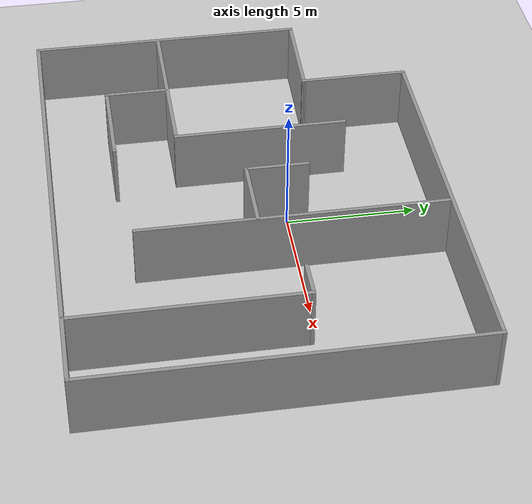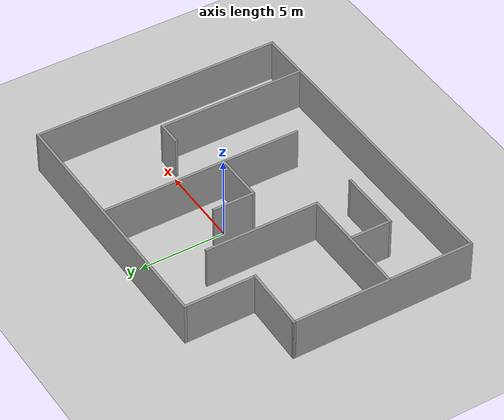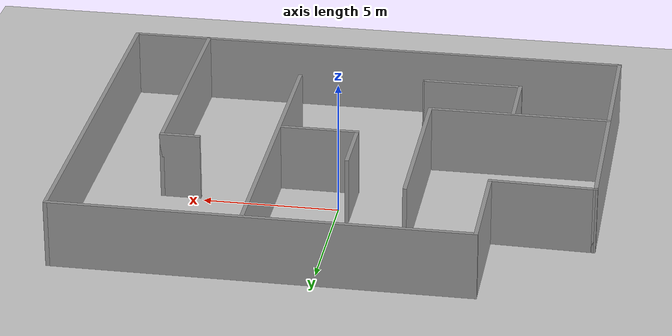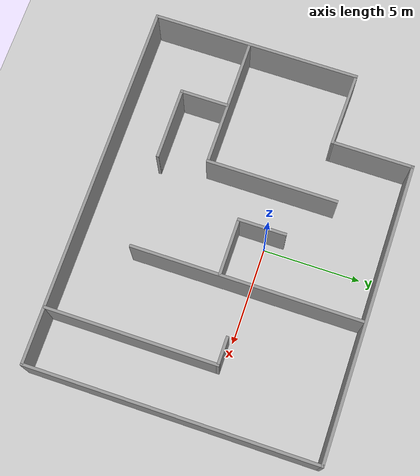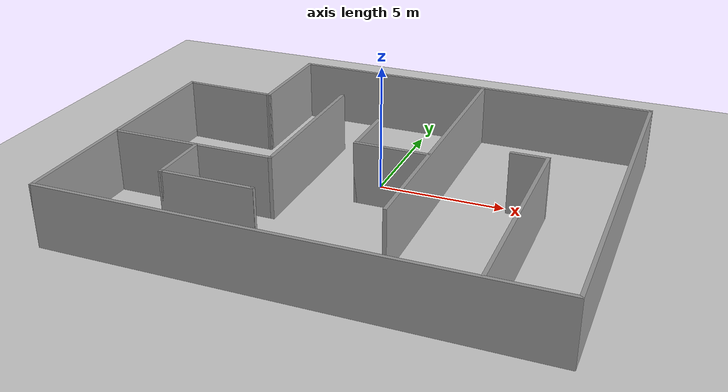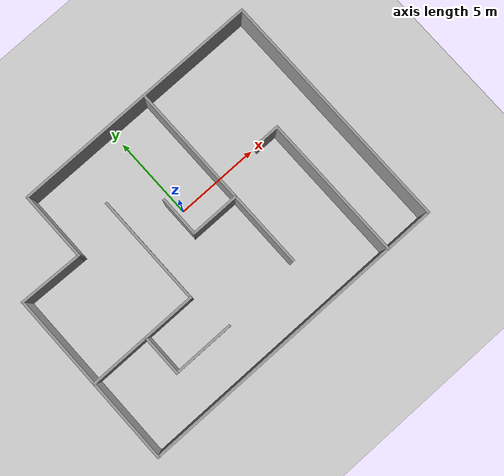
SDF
<sdf version="1.7">
 <world name="default">
  <light name="sun" type="directional">
   <cast_shadows>0</cast_shadows>
   <pose>0 0 10 0 -0 0</pose>
   <diffuse>0.8 0.8 0.8 1</diffuse>
   <specular>0.2 0.2 0.2 1</specular>
   <attenuation>
    <range>1000</range>
    <constant>0.9</constant>
    <linear>0.01</linear>
    <quadratic>0.001</quadratic>
   </attenuation>
   <direction>-0.5 0.1 -0.9</direction>
   <spot><inner_angle>0</inner_angle><outer_angle>0</outer_angle><falloff>0</falloff></spot>
  </light>
  <model name="ground_plane">
   <static>1</static>
   <link name="link">
    <collision name="collision">
     <geometry><plane><normal>0 0 1</normal><size>100 100</size></plane></geometry>
     <surface><friction><ode><mu>100</mu><mu2>50</mu2></ode></friction></surface>
    </collision>
    <visual name="visual">
     <cast_shadows>0</cast_shadows>
     <geometry><plane><normal>0 0 1</normal><size>100 100</size></plane></geometry>
     <material>
      <script><uri>file://media/materials/scripts/gazebo.material</uri><name>Gazebo/Grey</name></script>
     </material>
    </visual>
   </link>
  </model>
  <gravity>0 0 -9.8</gravity>
  <scene><ambient>0.4 0.4 0.4 1</ambient><background>0.7 0.7 0.7 1</background><shadows>1</shadows></scene>
  <magnetic_field>6e-06 2.3e-05 -4.2e-05</magnetic_field>
  <atmosphere type="adiabatic"/>
  <physics type="ode">
   <max_step_size>0.001</max_step_size>
   <real_time_factor>1</real_time_factor>
   <real_time_update_rate>1000</real_time_update_rate>
  </physics>
  <audio><device>default</device></audio>
  <spherical_coordinates>
   <surface_model>EARTH_WGS84</surface_model>
   <latitude_deg>0</latitude_deg>
   <longitude_deg>0</longitude_deg>
   <elevation>0</elevation>
   <heading_deg>0</heading_deg>
  </spherical_coordinates>
  <model name="robot_programming_world.world">
   <pose>-0.019675 -1.57359 0 0 -0 0</pose>
   <link name="Wall_0">
    <collision name="Wall_0_Collision">
     <geometry><box><size>10.75 0.15 2.5</size></box></geometry>
     <pose>0 0 1.25 0 -0 0</pose>
    </collision>
    <visual name="Wall_0_Visual">
     <pose>0 0 1.25 0 -0 0</pose>
     <geometry><box><size>10.75 0.15 2.5</size></box></geometry>
     <material>
      <script><uri>file://media/materials/scripts/gazebo.material</uri><name>Gazebo/Grey</name></script>
      <ambient>1 1 1 1</ambient>
     </material>
     <meta><layer>0</layer></meta>
    </visual>
    <pose>-9.42401 -2 0 0 -0 -1.5708</pose>
   </link>
   <link name="Wall_1">
    <collision name="Wall_1_Collision">
     <geometry><box><size>19 0.15 2.5</size></box></geometry>
     <pose>0 0 1.25 0 -0 0</pose>
    </collision>
    <visual name="Wall_1_Visual">
     <pose>0 0 1.25 0 -0 0</pose>
     <geometry><box><size>19 0.15 2.5</size></box></geometry>
     <material>
      <script><uri>file://media/materials/scripts/gazebo.material</uri><name>Gazebo/Grey</name></script>
      <ambient>1 1 1 1</ambient>
     </material>
     <meta><layer>0</layer></meta>
    </visual>
    <pose>0.000987 -7.3 0 0 -0 0</pose>
   </link>
   <link name="Wall_10">
    <collision name="Wall_10_Collision">
     <geometry><box><size>11.75 0.15 2.5</size></box></geometry>
     <pose>0 0 1.25 0 -0 0</pose>
    </collision>
    <visual name="Wall_10_Visual">
     <pose>0 0 1.25 0 -0 0</pose>
     <geometry><box><size>11.75 0.15 2.5</size></box></geometry>
     <material>
      <script><uri>file://media/materials/scripts/gazebo.material</uri><name>Gazebo/Grey</name></script>
      <ambient>1 1 1 1</ambient>
     </material>
     <meta><layer>0</layer></meta>
    </visual>
    <pose>2.4696 1.36567 0 0 -0 -1.5708</pose>
   </link>
   <link name="Wall_13">
    <collision name="Wall_13_Collision">
     <geometry><box><size>8.75 0.15 2.5</size></box></geometry>
     <pose>0 0 1.25 0 -0 0</pose>
    </collision>
    <visual name="Wall_13_Visual">
     <pose>0 0 1.25 0 -0 0</pose>
     <geometry><box><size>8.75 0.15 2.5</size></box></geometry>
     <material>
      <script><uri>file://media/materials/scripts/gazebo.material</uri><name>Gazebo/Grey</name></script>
      <ambient>1 1 1 1</ambient>
     </material>
     <meta><layer>0</layer></meta>
    </visual>
    <pose>6.57511 -2.95122 0 0 -0 1.5708</pose>
   </link>
   <link name="Wall_14">
    <collision name="Wall_14_Collision">
     <geometry><box><size>1.5 0.15 2.5</size></box></geometry>
     <pose>0 0 1.25 0 -0 0</pose>
    </collision>
    <visual name="Wall_14_Visual">
     <pose>0 0 1.25 0 -0 0</pose>
     <geometry><box><size>1.5 0.15 2.5</size></box></geometry>
     <material>
      <script><uri>file://media/materials/scripts/gazebo.material</uri><name>Gazebo/Grey</name></script>
      <ambient>1 1 1 1</ambient>
     </material>
     <meta><layer>0</layer></meta>
    </visual>
    <pose>5.90011 1.34878 0 0 -0 3.14159</pose>
   </link>
   <link name="Wall_16">
    <collision name="Wall_16_Collision">
     <geometry><box><size>2.5 0.15 2.5</size></box></geometry>
     <pose>0 0 1.25 0 -0 0</pose>
    </collision>
    <visual name="Wall_16_Visual">
     <pose>0 0 1.25 0 -0 0</pose>
     <geometry><box><size>2.5 0.15 2.5</size></box></geometry>
     <material>
      <script><uri>file://media/materials/scripts/gazebo.material</uri><name>Gazebo/Grey</name></script>
      <ambient>1 1 1 1</ambient>
     </material>
     <meta><layer>0</layer></meta>
    </visual>
    <pose>-5.88694 -3.57304 0 0 -0 -1.5708</pose>
   </link>
   <link name="Wall_17">
    <collision name="Wall_17_Collision">
     <geometry><box><size>3.75 0.15 2.5</size></box></geometry>
     <pose>0 0 1.25 0 -0 0</pose>
    </collision>
    <visual name="Wall_17_Visual">
     <pose>0 0 1.25 0 -0 0</pose>
     <geometry><box><size>3.75 0.15 2.5</size></box></geometry>
     <material>
      <script><uri>file://media/materials/scripts/gazebo.material</uri><name>Gazebo/Grey</name></script>
      <ambient>1 1 1 1</ambient>
     </material>
     <meta><layer>0</layer></meta>
    </visual>
    <pose>-4.08695 -4.74804 0 0 -0 0</pose>
   </link>
   <link name="Wall_18">
    <collision name="Wall_18_Collision">
     <geometry><box><size>0.16 0.15 2.5</size></box></geometry>
     <pose>0 0 1.25 0 -0 0</pose>
    </collision>
    <visual name="Wall_18_Visual">
     <pose>0 0 1.25 0 -0 0</pose>
     <geometry><box><size>0.16 0.15 2.5</size></box></geometry>
     <material>
      <script><uri>file://media/materials/scripts/gazebo.material</uri><name>Gazebo/Grey</name></script>
      <ambient>0 0 0 1</ambient>
     </material>
     <meta><layer>0</layer></meta>
    </visual>
    <pose>-2.28194 -4.74804 0 0 -0 0</pose>
   </link>
   <link name="Wall_19">
    <collision name="Wall_19_Collision">
     <geometry><box><size>3 0.15 2.5</size></box></geometry>
     <pose>0 0 1.25 0 -0 0</pose>
    </collision>
    <visual name="Wall_19_Visual">
     <pose>0 0 1.25 0 -0 0</pose>
     <geometry><box><size>3 0.15 2.5</size></box></geometry>
     <material>
      <script><uri>file://media/materials/scripts/gazebo.material</uri><name>Gazebo/Grey</name></script>
      <ambient>1 1 1 1</ambient>
     </material>
     <meta><layer>0</layer></meta>
    </visual>
    <pose>0.998952 0.052475 0 0 -0 3.14159</pose>
   </link>
   <link name="Wall_2">
    <collision name="Wall_2_Collision">
     <geometry><box><size>14.75 0.15 2.5</size></box></geometry>
     <pose>0 0 1.25 0 -0 0</pose>
    </collision>
    <visual name="Wall_2_Visual">
     <pose>0 0 1.25 0 -0 0</pose>
     <geometry><box><size>14.75 0.15 2.5</size></box></geometry>
     <material>
      <script><uri>file://media/materials/scripts/gazebo.material</uri><name>Gazebo/Grey</name></script>
      <ambient>1 1 1 1</ambient>
     </material>
     <meta><layer>0</layer></meta>
    </visual>
    <pose>9.42599 0 0 0 -0 1.5708</pose>
   </link>
   <link name="Wall_20">
    <collision name="Wall_20_Collision">
     <geometry><box><size>2.5 0.15 2.5</size></box></geometry>
     <pose>0 0 1.25 0 -0 0</pose>
    </collision>
    <visual name="Wall_20_Visual">
     <pose>0 0 1.25 0 -0 0</pose>
     <geometry><box><size>2.5 0.15 2.5</size></box></geometry>
     <material>
      <script><uri>file://media/materials/scripts/gazebo.material</uri><name>Gazebo/Grey</name></script>
      <ambient>1 1 1 1</ambient>
     </material>
     <meta><layer>0</layer></meta>
    </visual>
    <pose>-0.426048 1.22748 0 0 -0 1.5708</pose>
   </link>
   <link name="Wall_3">
    <collision name="Wall_3_Collision">
     <geometry><box><size>15.25 0.15 2.5</size></box></geometry>
     <pose>0 0 1.25 0 -0 0</pose>
    </collision>
    <visual name="Wall_3_Visual">
     <pose>0 0 1.25 0 -0 0</pose>
     <geometry><box><size>15.25 0.15 2.5</size></box></geometry>
     <material>
      <script><uri>file://media/materials/scripts/gazebo.material</uri><name>Gazebo/Grey</name></script>
      <ambient>1 1 1 1</ambient>
     </material>
     <meta><layer>0</layer></meta>
    </visual>
    <pose>1.87599 7.3 0 0 -0 3.14159</pose>
   </link>
   <link name="Wall_4">
    <collision name="Wall_4_Collision">
     <geometry><box><size>4.25 0.15 2.5</size></box></geometry>
     <pose>0 0 1.25 0 -0 0</pose>
    </collision>
    <visual name="Wall_4_Visual">
     <pose>0 0 1.25 0 -0 0</pose>
     <geometry><box><size>4.25 0.15 2.5</size></box></geometry>
     <material>
      <script><uri>file://media/materials/scripts/gazebo.material</uri><name>Gazebo/Grey</name></script>
      <ambient>1 1 1 1</ambient>
     </material>
     <meta><layer>0</layer></meta>
    </visual>
    <pose>-5.67401 5.25 0 0 -0 -1.5708</pose>
   </link>
   <link name="Wall_5">
    <collision name="Wall_5_Collision">
     <geometry><box><size>3.90133 0.15 2.5</size></box></geometry>
     <pose>0 0 1.25 0 -0 0</pose>
    </collision>
    <visual name="Wall_5_Visual">
     <pose>0 0 1.25 0 -0 0</pose>
     <geometry><box><size>3.90133 0.15 2.5</size></box></geometry>
     <material>
      <script><uri>file://media/materials/scripts/gazebo.material</uri><name>Gazebo/Grey</name></script>
      <ambient>1 1 1 1</ambient>
     </material>
     <meta><layer>0</layer></meta>
    </visual>
    <pose>-7.54901 3.25 0 0 -0 3.11493</pose>
   </link>
   <link name="Wall_6">
    <collision name="Wall_6_Collision">
     <geometry><box><size>0.16 0.15 2.5</size></box></geometry>
     <pose>0 0 1.25 0 -0 0</pose>
    </collision>
    <visual name="Wall_6_Visual">
     <pose>0 0 1.25 0 -0 0</pose>
     <geometry><box><size>0.16 0.15 2.5</size></box></geometry>
     <material>
      <script><uri>file://media/materials/scripts/gazebo.material</uri><name>Gazebo/Grey</name></script>
      <ambient>0 0 0 1</ambient>
     </material>
     <meta><layer>0</layer></meta>
    </visual>
    <pose>-9.41901 3.3 0 0 -0 0</pose>
   </link>
   <link name="Wall_7">
    <collision name="Wall_7_Collision">
     <geometry><box><size>6.75 0.15 2.5</size></box></geometry>
     <pose>0 0 1.25 0 -0 0</pose>
    </collision>
    <visual name="Wall_7_Visual">
     <pose>0 0 1.25 0 -0 0</pose>
     <geometry><box><size>6.75 0.15 2.5</size></box></geometry>
     <material>
      <script><uri>file://media/materials/scripts/gazebo.material</uri><name>Gazebo/Grey</name></script>
      <ambient>1 1 1 1</ambient>
     </material>
     <meta><layer>0</layer></meta>
    </visual>
    <pose>-6.094 -2.32521 0 0 -0 0</pose>
   </link>
   <link name="Wall_8">
    <collision name="Wall_8_Collision">
     <geometry><box><size>6.75 0.15 2.5</size></box></geometry>
     <pose>0 0 1.25 0 -0 0</pose>
    </collision>
    <visual name="Wall_8_Visual">
     <pose>0 0 1.25 0 -0 0</pose>
     <geometry><box><size>6.75 0.15 2.5</size></box></geometry>
     <material>
      <script><uri>file://media/materials/scripts/gazebo.material</uri><name>Gazebo/Grey</name></script>
      <ambient>1 1 1 1</ambient>
     </material>
     <meta><layer>0</layer></meta>
    </visual>
    <pose>-2.794 0.974787 0 0 -0 1.5708</pose>
   </link>
   <static>1</static>
  </model>
 </world>
</sdf>
